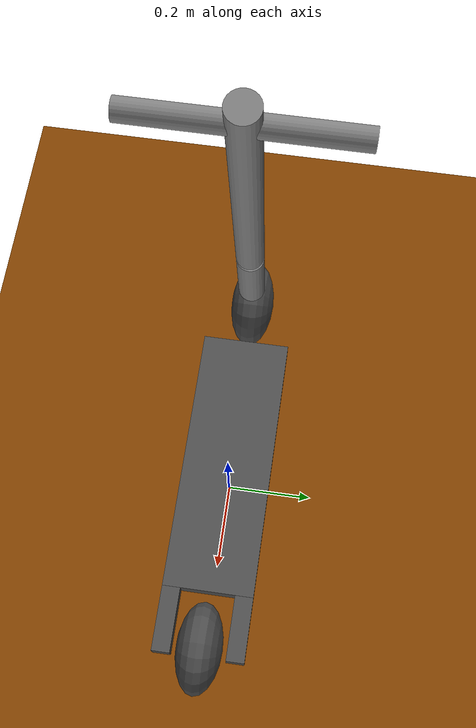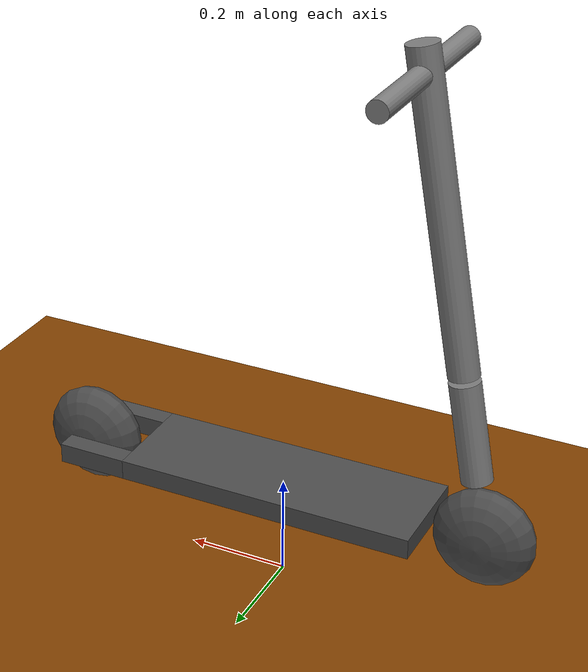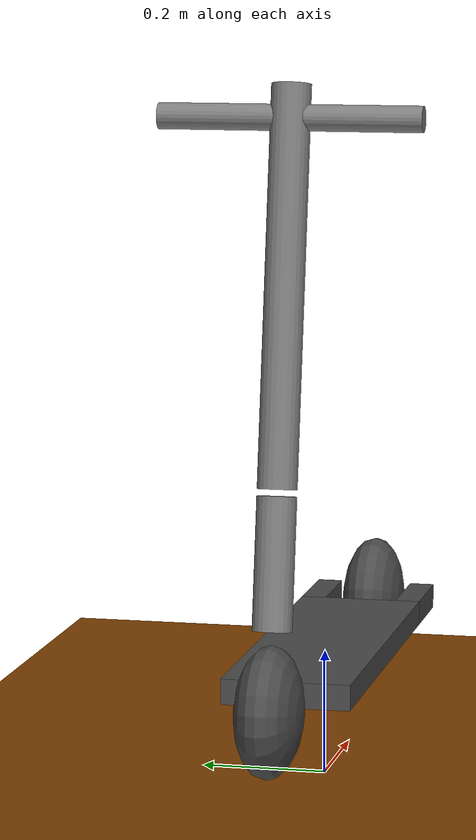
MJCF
<mujoco>
    <option gravity="0 0 -9.8">
    </option>
    <asset>
        <material name="scooterBody" rgba=".3 .3 .3 1"/>
        <material name="scooterWheel" rgba=".3 .3 .3 1"/>
    </asset>
    <worldbody>
        <light diffuse=".5 .5 .5" pos="0 0 3" dir="0 0 -1"/>
        <geom type="plane" size="10 1 .1" rgba=".5 .25 0 1"/>
        <body name="scooter" pos="0 0 .2" euler="0 0 0">
            <camera name="third_person" mode="fixed" pos="-1 0 1" xyaxes="0 -1 0 0.707 0 0.707"/>
            <joint type="free"/>
            <geom type="box" size=".3 .1 .02" material="scooterBody"/>
            <geom type="box" pos=".37 .08 0" size=".07 .02 .02" material="scooterBody"/>
            <geom type="box" pos=".37 -.08 0" size=".07 .02 .02" material="scooterBody"/>
            <body name="back_wheel" pos=".42 0 0">
                <joint name="axle_back" frictionloss=".001" type="hinge" axis="0 -1 0" />
                <geom type="ellipsoid" euler="90 0 0" friction="2 .005 .0001" size=".1 .1 .05" material="scooterWheel" mass=".49"/>
            </body>
            <body pos="-.41 0 0" name="steering_pole" euler="0 10 0">
                <joint limited="true" frictionloss="0.1" damping="0.01" armature="0.0002" range="-30.58 30.58" name="steering_axle" type="hinge" axis="0 0 1" />
                <geom pos="0 0 .22" type="cylinder" size=".03 .1"  />
                <body name="balancing_pole">
                    <geom pos="0 0 .63" type="cylinder" size=".03 .3" mass="1"  />
                    <geom pos="0 0 0.88" type="cylinder" size=".02 .2" euler="90 0 0" />
                    <joint name="balancing_axle" type="hinge" pos="0 0 .33" axis="1 0 0" frictionloss=".5" limited="true" range="-20 20" damping=".1" armature=".1" />
                </body>
                <body name="front_wheel" pos="0 0 0">
                    <joint name="axle_front" type="hinge" axis="0 -1 0" frictionloss=".1" damping=".01" armature=".01" />
                    <geom type="ellipsoid" euler="90 0 0" friction="2 .005 .0001" size=".1 .1 .05" material="scooterWheel" mass=".49"/>
                </body>
            </body>
        </body>
    </worldbody>
    <actuator>
        <velocity gear=".34"  name="forwardMotor" joint="axle_front" kv="100"/>
        <position name="steering_pos" kp="1.0" joint="steering_axle" />
        <position name="balancing_pos" kp="5.0" joint="balancing_axle" />
    </actuator>
</mujoco>
